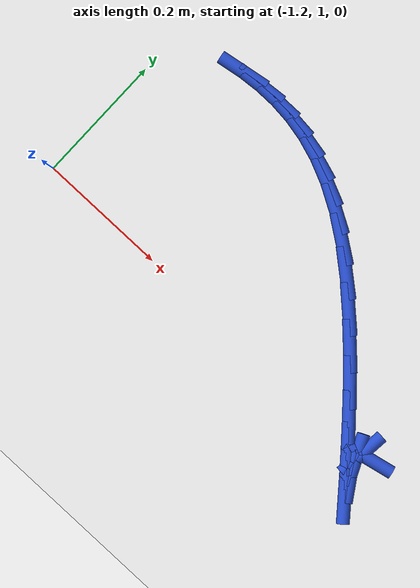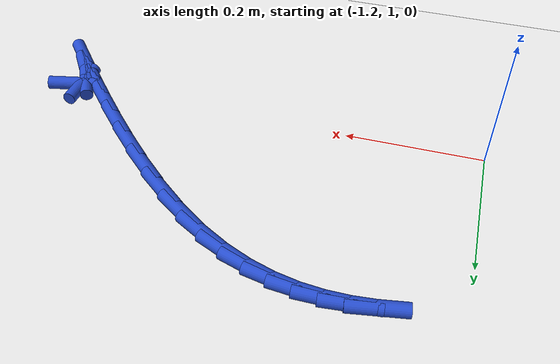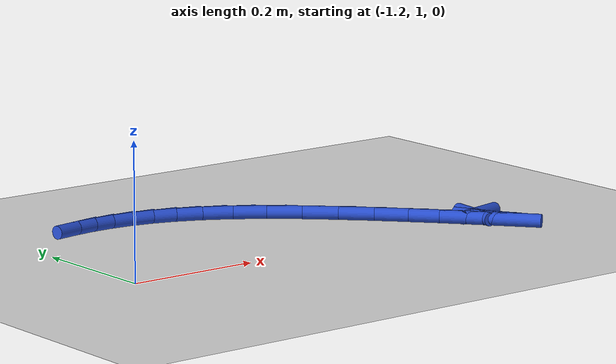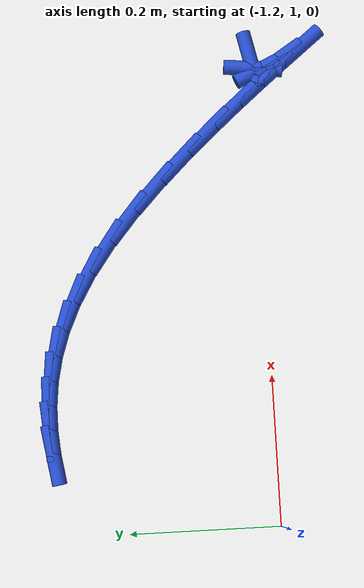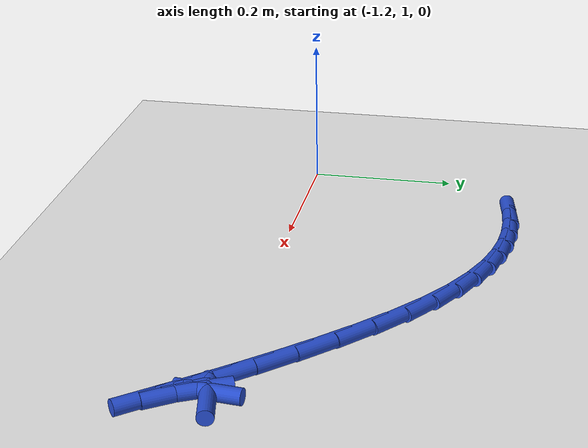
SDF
<sdf version="1.6">
 <world name="default">
  <model name="ground_plane">
   <static>1</static>
   <link name="link">
    <collision name="collision">
     <geometry><plane><normal>0 0 1</normal><size>100 100</size></plane></geometry>
     <surface><friction><ode><mu>100</mu><mu2>50</mu2></ode></friction></surface>
    </collision>
    <visual name="visual">
     <cast_shadows>0</cast_shadows>
     <geometry><plane><normal>0 0 1</normal><size>100 100</size></plane></geometry>
     <material>
      <script><uri>file://media/materials/scripts/gazebo.material</uri><name>Gazebo/WhiteGlow</name></script>
     </material>
    </visual>
   </link>
  </model>
  <model name="line">
   <link name="link_34">
    <pose>-0.5678340390815307 1.0034094890117786 0.01 0 1.57 0.2063550951875672</pose>
    <collision name="collision">
     <geometry><cylinder><radius>0.01</radius><length>0.08</length></cylinder></geometry>
    </collision>
    <visual name="visual">
     <material>
      <script><name>Gazebo/Blue</name><uri>file://media/materials/scripts/gazebo.material</uri></script>
     </material>
     <geometry><cylinder><radius>0.01</radius><length>0.08</length></cylinder></geometry>
    </visual>
   </link>
   <link name="link_35">
    <pose>-0.5793584565435682 1.0009970263063077 0.01 0 1.57 1.4745004073202177</pose>
    <collision name="collision">
     <geometry><cylinder><radius>0.01</radius><length>0.08</length></cylinder></geometry>
    </collision>
    <visual name="visual">
     <material>
      <script><name>Gazebo/Blue</name><uri>file://media/materials/scripts/gazebo.material</uri></script>
     </material>
     <geometry><cylinder><radius>0.01</radius><length>0.08</length></cylinder></geometry>
    </visual>
   </link>
   <link name="link_36">
    <pose>-0.5805129410121718 0.989045182527946 0.01 0 1.57 -1.1282633665600263</pose>
    <collision name="collision">
     <geometry><cylinder><radius>0.01</radius><length>0.08</length></cylinder></geometry>
    </collision>
    <visual name="visual">
     <material>
      <script><name>Gazebo/Blue</name><uri>file://media/materials/scripts/gazebo.material</uri></script>
     </material>
     <geometry><cylinder><radius>0.01</radius><length>0.08</length></cylinder></geometry>
    </visual>
   </link>
   <link name="link_37">
    <pose>-0.5698392278463899 0.9665210304962868 0.01 0 1.57 -0.9907821835656347</pose>
    <collision name="collision">
     <geometry><cylinder><radius>0.01</radius><length>0.08</length></cylinder></geometry>
    </collision>
    <visual name="visual">
     <material>
      <script><name>Gazebo/Blue</name><uri>file://media/materials/scripts/gazebo.material</uri></script>
     </material>
     <geometry><cylinder><radius>0.01</radius><length>0.08</length></cylinder></geometry>
    </visual>
   </link>
   <link name="link_42">
    <pose>-0.5552272835385784 0.9382628256319117 0.01 0 1.57 -0.8881600334387298</pose>
    <collision name="collision">
     <geometry><cylinder><radius>0.01</radius><length>0.08</length></cylinder></geometry>
    </collision>
    <visual name="visual">
     <material>
      <script><name>Gazebo/Blue</name><uri>file://media/materials/scripts/gazebo.material</uri></script>
     </material>
     <geometry><cylinder><radius>0.01</radius><length>0.08</length></cylinder></geometry>
    </visual>
   </link>
   <link name="link_43">
    <pose>-0.5750932341740017 0.9626972589616377 0.01 0 1.57 -0.8787312259694798</pose>
    <collision name="collision">
     <geometry><cylinder><radius>0.01</radius><length>0.08</length></cylinder></geometry>
    </collision>
    <visual name="visual">
     <material>
      <script><name>Gazebo/Blue</name><uri>file://media/materials/scripts/gazebo.material</uri></script>
     </material>
     <geometry><cylinder><radius>0.01</radius><length>0.08</length></cylinder></geometry>
    </visual>
   </link>
   <link name="link_44">
    <pose>-0.6005787065465583 0.9934465913727076 0.01 0 1.57 -0.8645948208912567</pose>
    <collision name="collision">
     <geometry><cylinder><radius>0.01</radius><length>0.08</length></cylinder></geometry>
    </collision>
    <visual name="visual">
     <material>
      <script><name>Gazebo/Blue</name><uri>file://media/materials/scripts/gazebo.material</uri></script>
     </material>
     <geometry><cylinder><radius>0.01</radius><length>0.08</length></cylinder></geometry>
    </visual>
   </link>
   <link name="link_45">
    <pose>-0.6307084536838592 1.0287709498282607 0.01 0 1.57 -0.8459250361362335</pose>
    <collision name="collision">
     <geometry><cylinder><radius>0.01</radius><length>0.08</length></cylinder></geometry>
    </collision>
    <visual name="visual">
     <material>
      <script><name>Gazebo/Blue</name><uri>file://media/materials/scripts/gazebo.material</uri></script>
     </material>
     <geometry><cylinder><radius>0.01</radius><length>0.08</length></cylinder></geometry>
    </visual>
   </link>
   <link name="link_46">
    <pose>-0.6645072286135147 1.0669304612914339 0.01 0 1.57 -0.821848446545115</pose>
    <collision name="collision">
     <geometry><cylinder><radius>0.01</radius><length>0.08</length></cylinder></geometry>
    </collision>
    <visual name="visual">
     <material>
      <script><name>Gazebo/Blue</name><uri>file://media/materials/scripts/gazebo.material</uri></script>
     </material>
     <geometry><cylinder><radius>0.01</radius><length>0.08</length></cylinder></geometry>
    </visual>
   </link>
   <link name="link_47">
    <pose>-0.7009997843631356 1.1061852527253668 0.01 0 1.57 -0.790593405373712</pose>
    <collision name="collision">
     <geometry><cylinder><radius>0.01</radius><length>0.08</length></cylinder></geometry>
    </collision>
    <visual name="visual">
     <material>
      <script><name>Gazebo/Blue</name><uri>file://media/materials/scripts/gazebo.material</uri></script>
     </material>
     <geometry><cylinder><radius>0.01</radius><length>0.08</length></cylinder></geometry>
    </visual>
   </link>
   <link name="link_48">
    <pose>-0.7392108739603325 1.144795451093197 0.01 0 1.57 -0.7491193252465159</pose>
    <collision name="collision">
     <geometry><cylinder><radius>0.01</radius><length>0.08</length></cylinder></geometry>
    </collision>
    <visual name="visual">
     <material>
      <script><name>Gazebo/Blue</name><uri>file://media/materials/scripts/gazebo.material</uri></script>
     </material>
     <geometry><cylinder><radius>0.01</radius><length>0.08</length></cylinder></geometry>
    </visual>
   </link>
   <link name="link_49">
    <pose>-0.7781652504327157 1.1810211833580624 0.01 0 1.57 -0.6921832481922636</pose>
    <collision name="collision">
     <geometry><cylinder><radius>0.01</radius><length>0.08</length></cylinder></geometry>
    </collision>
    <visual name="visual">
     <material>
      <script><name>Gazebo/Blue</name><uri>file://media/materials/scripts/gazebo.material</uri></script>
     </material>
     <geometry><cylinder><radius>0.01</radius><length>0.08</length></cylinder></geometry>
    </visual>
   </link>
   <link name="link_50">
    <pose>-0.8168876668078962 1.2131225764831015 0.01 0 1.57 -0.6135892848076143</pose>
    <collision name="collision">
     <geometry><cylinder><radius>0.01</radius><length>0.08</length></cylinder></geometry>
    </collision>
    <visual name="visual">
     <material>
      <script><name>Gazebo/Blue</name><uri>file://media/materials/scripts/gazebo.material</uri></script>
     </material>
     <geometry><cylinder><radius>0.01</radius><length>0.08</length></cylinder></geometry>
    </visual>
   </link>
   <link name="link_51">
    <pose>-0.8545412952096035 1.239641082893837 0.01 0 1.57 -0.5211288251336482</pose>
    <collision name="collision">
     <geometry><cylinder><radius>0.01</radius><length>0.08</length></cylinder></geometry>
    </collision>
    <visual name="visual">
     <material>
      <script><name>Gazebo/Blue</name><uri>file://media/materials/scripts/gazebo.material</uri></script>
     </material>
     <geometry><cylinder><radius>0.01</radius><length>0.08</length></cylinder></geometry>
    </visual>
   </link>
   <link name="link_52">
    <pose>-0.8910055196930917 1.26057379703665 0.01 0 1.57 -0.4202678960532829</pose>
    <collision name="collision">
     <geometry><cylinder><radius>0.01</radius><length>0.08</length></cylinder></geometry>
    </collision>
    <visual name="visual">
     <material>
      <script><name>Gazebo/Blue</name><uri>file://media/materials/scripts/gazebo.material</uri></script>
     </material>
     <geometry><cylinder><radius>0.01</radius><length>0.08</length></cylinder></geometry>
    </visual>
   </link>
   <link name="link_53">
    <pose>-0.9263906785535868 1.2763872089122297 0.01 0 1.57 -0.3135866445528265</pose>
    <collision name="collision">
     <geometry><cylinder><radius>0.01</radius><length>0.08</length></cylinder></geometry>
    </collision>
    <visual name="visual">
     <material>
      <script><name>Gazebo/Blue</name><uri>file://media/materials/scripts/gazebo.material</uri></script>
     </material>
     <geometry><cylinder><radius>0.01</radius><length>0.08</length></cylinder></geometry>
    </visual>
   </link>
   <link name="link_54">
    <pose>-0.9608072229423574 1.2875480378919182 0.01 0 1.57 -0.20492800180479723</pose>
    <collision name="collision">
     <geometry><cylinder><radius>0.01</radius><length>0.08</length></cylinder></geometry>
    </collision>
    <visual name="visual">
     <material>
      <script><name>Gazebo/Blue</name><uri>file://media/materials/scripts/gazebo.material</uri></script>
     </material>
     <geometry><cylinder><radius>0.01</radius><length>0.08</length></cylinder></geometry>
    </visual>
   </link>
   <link name="link_55">
    <pose>-0.994365604010672 1.2945230033470574 0.01 0 1.57 -0.09890678045338026</pose>
    <collision name="collision">
     <geometry><cylinder><radius>0.01</radius><length>0.08</length></cylinder></geometry>
    </collision>
    <visual name="visual">
     <material>
      <script><name>Gazebo/Blue</name><uri>file://media/materials/scripts/gazebo.material</uri></script>
     </material>
     <geometry><cylinder><radius>0.01</radius><length>0.08</length></cylinder></geometry>
    </visual>
   </link>
   <link name="link_56">
    <pose>-1.0271762729097997 1.2977788246489894 0.01 0 1.57 -0.0001055691727228564</pose>
    <collision name="collision">
     <geometry><cylinder><radius>0.01</radius><length>0.08</length></cylinder></geometry>
    </collision>
    <visual name="visual">
     <material>
      <script><name>Gazebo/Blue</name><uri>file://media/materials/scripts/gazebo.material</uri></script>
     </material>
     <geometry><cylinder><radius>0.01</radius><length>0.08</length></cylinder></geometry>
    </visual>
   </link>
   <link name="link_57">
    <pose>-1.059349680791009 1.2977822211690557 0.01 0 1.57 0.08769262491750153</pose>
    <collision name="collision">
     <geometry><cylinder><radius>0.01</radius><length>0.08</length></cylinder></geometry>
    </collision>
    <visual name="visual">
     <material>
      <script><name>Gazebo/Blue</name><uri>file://media/materials/scripts/gazebo.material</uri></script>
     </material>
     <geometry><cylinder><radius>0.01</radius><length>0.08</length></cylinder></geometry>
    </visual>
   </link>
   <link name="link_58">
    <pose>-1.0909962788055687 1.2949999122785985 0.01 0 1.57 0.16191478963123873</pose>
    <collision name="collision">
     <geometry><cylinder><radius>0.01</radius><length>0.08</length></cylinder></geometry>
    </collision>
    <visual name="visual">
     <material>
      <script><name>Gazebo/Blue</name><uri>file://media/materials/scripts/gazebo.material</uri></script>
     </material>
     <geometry><cylinder><radius>0.01</radius><length>0.08</length></cylinder></geometry>
    </visual>
   </link>
  </model>
 </world>
</sdf>
